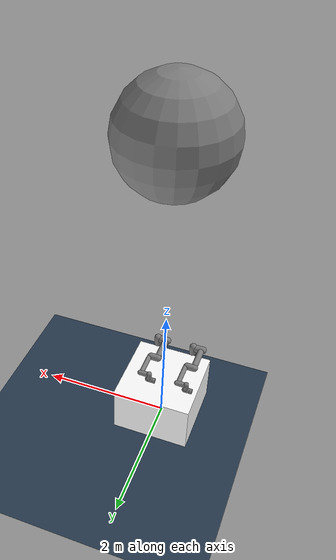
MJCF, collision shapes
<mujoco model="table_arena">
  <option integrator="implicitfast" />
<compiler angle="radian" meshdir="/home/lxu/LizhouXu/Repo/shirt_manipulation/models/universal_robots_ur5e/assets" autolimits="true" />
    <extension>
        <plugin plugin="mujoco.elasticity.shell" />
    </extension>
  <asset>
    <texture name="plane" type="2d" builtin="checker" rgb1=".2 .3 .4" rgb2=".1 0.15 0.2" width="512" height="512" mark="cross" markrgb=".8 .8 .8" />
    <texture name="hammock" type="2d" builtin="checker" rgb1=".1 .5 .1" rgb2=".5 .1 .1" width="512" height="512" mark="edge" markrgb=".8 .8 .8" />
    <material name="plane" reflectance="0.3" texture="plane" texrepeat="1 1" texuniform="true" />
    <material name="hammock" texture="hammock" />
    <material name="white" rgba="1 1 1 1" />
  </asset>
  <default>
    <default class="ur5e">
      <material specular="0.5" shininess="0.25" />
      <joint axis="0 1 0" range="-6.28319 6.28319" armature="0.1" />
      <general gaintype="fixed" biastype="affine" ctrlrange="-6.2831 6.2831" gainprm="2000" biasprm="0 -2000 -400" forcerange="-150 150" />
      <default class="size3">
        <default class="size3_limited">
          <joint range="-3.1415 3.1415" />
          <general ctrlrange="-3.1415 3.1415" />
        </default>
      </default>
      <default class="size1">
        <general gainprm="500" biasprm="0 -500 -100" forcerange="-28 28" />
      </default>
      <default class="visual">
        <geom type="mesh" contype="0" conaffinity="0" group="2" />
      </default>
      <default class="collision">
        <geom type="capsule" group="3" />
        <default class="eef_collision">
          <geom type="cylinder" />
        </default>
      </default>
      <site size="0.001" rgba="0.5 0.5 0.5 0.3" group="4" />
    </default>
  </default>

  <asset>
    <material class="ur5e" name="black" rgba="0.033 0.033 0.033 1" />
    <material class="ur5e" name="jointgray" rgba="0.278 0.278 0.278 1" />
    <material class="ur5e" name="linkgray" rgba="0.82 0.82 0.82 1" />
    <material class="ur5e" name="urblue" rgba="0.49 0.678 0.8 1" />

    <mesh file="base_0.obj" />
    <mesh file="base_1.obj" />
    <mesh file="shoulder_0.obj" />
    <mesh file="shoulder_1.obj" />
    <mesh file="shoulder_2.obj" />
    <mesh file="upperarm_0.obj" />
    <mesh file="upperarm_1.obj" />
    <mesh file="upperarm_2.obj" />
    <mesh file="upperarm_3.obj" />
    <mesh file="forearm_0.obj" />
    <mesh file="forearm_1.obj" />
    <mesh file="forearm_2.obj" />
    <mesh file="forearm_3.obj" />
    <mesh file="wrist1_0.obj" />
    <mesh file="wrist1_1.obj" />
    <mesh file="wrist1_2.obj" />
    <mesh file="wrist2_0.obj" />
    <mesh file="wrist2_1.obj" />
    <mesh file="wrist2_2.obj" />
    <mesh file="wrist3.obj" />
  </asset>

  <worldbody>

    <geom condim="3" group="1" name="floor" material="plane" pos="0 0 0" size="3 3 .125" type="plane" />

    <body name="table" pos="0 0 0.4">
      <geom pos="0 0 0" size="0.6 0.6 0.4" type="box" material="white" group="0" name="table_collision" friction="1 0.005 0.0001" />
      <geom pos="0 0 0" size="0.6 0.6 0.4" type="box" material="white" conaffinity="0" contype="0" group="1" name="table_visual" />
      <site pos="0 0 0.4" name="table_top" size="0.001 0.001 0.001" rgba="0 0 0 0" />
    </body>
    <light pos="1.0 1.0 1.5" dir="-0.2 -0.2 -1" specular="0.3 0.3 0.3" directional="true" castshadow="false" />

  <body name="r1_base" pos="0.3 -0.6 0.81" quat="1 0 0 1" childclass="ur5e">
      <inertial mass="4.0" pos="0 0 0" diaginertia="0.00443333156 0.00443333156 0.0072" />
      <geom mesh="base_0" material="black" class="visual" />
      <geom mesh="base_1" material="jointgray" class="visual" />
      <body name="r1_shoulder_link" pos="0 0 0.163">
        <inertial mass="3.7" pos="0 0 0" diaginertia="0.0102675 0.0102675 0.00666" />
        <joint name="r1_shoulder_pan_joint" class="size3" axis="0 0 1" />
        <geom mesh="shoulder_0" material="urblue" class="visual" />
        <geom mesh="shoulder_1" material="black" class="visual" />
        <geom mesh="shoulder_2" material="jointgray" class="visual" />
        <geom class="collision" size="0.06 0.06" pos="0 0 -0.04" />
        <body name="r1_upper_arm_link" pos="0 0.138 0" quat="1 0 1 0">
          <inertial mass="8.393" pos="0 0 0.2125" diaginertia="0.133886 0.133886 0.0151074" />
          <joint name="r1_shoulder_lift_joint" class="size3" />
          <geom mesh="upperarm_0" material="linkgray" class="visual" />
          <geom mesh="upperarm_1" material="black" class="visual" />
          <geom mesh="upperarm_2" material="jointgray" class="visual" />
          <geom mesh="upperarm_3" material="urblue" class="visual" />
          <geom class="collision" pos="0 -0.04 0" quat="1 1 0 0" size="0.06 0.06" />
          <geom class="collision" size="0.05 0.2" pos="0 0 0.2" />
          <body name="r1_forearm_link" pos="0 -0.131 0.425">
            <inertial mass="2.275" pos="0 0 0.196" diaginertia="0.0311796 0.0311796 0.004095" />
            <joint name="r1_elbow_joint" class="size3_limited" />
            <geom mesh="forearm_0" material="urblue" class="visual" />
            <geom mesh="forearm_1" material="linkgray" class="visual" />
            <geom mesh="forearm_2" material="black" class="visual" />
            <geom mesh="forearm_3" material="jointgray" class="visual" />
            <geom class="collision" pos="0 0.08 0" quat="1 1 0 0" size="0.055 0.06" />
            <geom class="collision" size="0.038 0.19" pos="0 0 0.2" />
            <body name="r1_wrist_1_link" pos="0 0 0.392" quat="1 0 1 0">
              <inertial mass="1.219" pos="0 0.127 0" diaginertia="0.0025599 0.0025599 0.0021942" />
              <joint name="r1_wrist_1_joint" class="size1" />
              <geom mesh="wrist1_0" material="black" class="visual" />
              <geom mesh="wrist1_1" material="urblue" class="visual" />
              <geom mesh="wrist1_2" material="jointgray" class="visual" />
              <geom class="collision" pos="0 0.05 0" quat="1 1 0 0" size="0.04 0.07" />
              <body name="r1_wrist_2_link" pos="0 0.127 0">
                <inertial mass="1.219" pos="0 0 0.1" diaginertia="0.0025599 0.0025599 0.0021942" />
                <joint name="r1_wrist_2_joint" axis="0 0 1" class="size1" />
                <geom mesh="wrist2_0" material="black" class="visual" />
                <geom mesh="wrist2_1" material="urblue" class="visual" />
                <geom mesh="wrist2_2" material="jointgray" class="visual" />
                <geom class="collision" size="0.04 0.06" pos="0 0 0.04" />
                <geom class="collision" pos="0 0.02 0.1" quat="1 1 0 0" size="0.04 0.04" />
                <body name="r1_wrist_3_link" pos="0 0 0.1">
                  <inertial mass="0.1889" pos="0 0.0771683 0" quat="1 0 0 1" diaginertia="0.000132134 9.90863e-05 9.90863e-05" />
                  <joint name="r1_wrist_3_joint" class="size1" />
                  <geom material="linkgray" mesh="wrist3" class="visual" />
                  <geom class="eef_collision" pos="0 0.08 0" quat="1 1 0 0" size="0.04 0.02" />
                  <site name="r1_attachment_site" pos="0 0.1 0" quat="-1 1 0 0" />
                </body>
              </body>
            </body>
          </body>
        </body>
      </body>
    </body>

  <body name="r2_base" pos="-0.3 -0.6 0.81" quat="1 0 0 1" childclass="ur5e">
      <inertial mass="4.0" pos="0 0 0" diaginertia="0.00443333156 0.00443333156 0.0072" />
      <geom mesh="base_0" material="black" class="visual" />
      <geom mesh="base_1" material="jointgray" class="visual" />
      <body name="r2_shoulder_link" pos="0 0 0.163">
        <inertial mass="3.7" pos="0 0 0" diaginertia="0.0102675 0.0102675 0.00666" />
        <joint name="r2_shoulder_pan_joint" class="size3" axis="0 0 1" />
        <geom mesh="shoulder_0" material="urblue" class="visual" />
        <geom mesh="shoulder_1" material="black" class="visual" />
        <geom mesh="shoulder_2" material="jointgray" class="visual" />
        <geom class="collision" size="0.06 0.06" pos="0 0 -0.04" />
        <body name="r2_upper_arm_link" pos="0 0.138 0" quat="1 0 1 0">
          <inertial mass="8.393" pos="0 0 0.2125" diaginertia="0.133886 0.133886 0.0151074" />
          <joint name="r2_shoulder_lift_joint" class="size3" />
          <geom mesh="upperarm_0" material="linkgray" class="visual" />
          <geom mesh="upperarm_1" material="black" class="visual" />
          <geom mesh="upperarm_2" material="jointgray" class="visual" />
          <geom mesh="upperarm_3" material="urblue" class="visual" />
          <geom class="collision" pos="0 -0.04 0" quat="1 1 0 0" size="0.06 0.06" />
          <geom class="collision" size="0.05 0.2" pos="0 0 0.2" />
          <body name="r2_forearm_link" pos="0 -0.131 0.425">
            <inertial mass="2.275" pos="0 0 0.196" diaginertia="0.0311796 0.0311796 0.004095" />
            <joint name="r2_elbow_joint" class="size3_limited" />
            <geom mesh="forearm_0" material="urblue" class="visual" />
            <geom mesh="forearm_1" material="linkgray" class="visual" />
            <geom mesh="forearm_2" material="black" class="visual" />
            <geom mesh="forearm_3" material="jointgray" class="visual" />
            <geom class="collision" pos="0 0.08 0" quat="1 1 0 0" size="0.055 0.06" />
            <geom class="collision" size="0.038 0.19" pos="0 0 0.2" />
            <body name="r2_wrist_1_link" pos="0 0 0.392" quat="1 0 1 0">
              <inertial mass="1.219" pos="0 0.127 0" diaginertia="0.0025599 0.0025599 0.0021942" />
              <joint name="r2_wrist_1_joint" class="size1" />
              <geom mesh="wrist1_0" material="black" class="visual" />
              <geom mesh="wrist1_1" material="urblue" class="visual" />
              <geom mesh="wrist1_2" material="jointgray" class="visual" />
              <geom class="collision" pos="0 0.05 0" quat="1 1 0 0" size="0.04 0.07" />
              <body name="r2_wrist_2_link" pos="0 0.127 0">
                <inertial mass="1.219" pos="0 0 0.1" diaginertia="0.0025599 0.0025599 0.0021942" />
                <joint name="r2_wrist_2_joint" axis="0 0 1" class="size1" />
                <geom mesh="wrist2_0" material="black" class="visual" />
                <geom mesh="wrist2_1" material="urblue" class="visual" />
                <geom mesh="wrist2_2" material="jointgray" class="visual" />
                <geom class="collision" size="0.04 0.06" pos="0 0 0.04" />
                <geom class="collision" pos="0 0.02 0.1" quat="1 1 0 0" size="0.04 0.04" />
                <body name="r2_wrist_3_link" pos="0 0 0.1">
                  <inertial mass="0.1889" pos="0 0.0771683 0" quat="1 0 0 1" diaginertia="0.000132134 9.90863e-05 9.90863e-05" />
                  <joint name="r2_wrist_3_joint" class="size1" />
                  <geom material="linkgray" mesh="wrist3" class="visual" />
                  <geom class="eef_collision" pos="0 0.08 0" quat="1 1 0 0" size="0.04 0.02" />
                  <site name="r2_attachment_site" pos="0 0.1 0" quat="-1 1 0 0" />
                </body>
              </body>
            </body>
          </body>
        </body>
      </body>
    </body>

    <camera mode="fixed" name="birdview" pos="0.0 0 2.4" quat="0.7071 0 0 0.7071" />

  <geom type="sphere" size="0.8" pos="0.004106737535379382 0.02145249729705183 4.934825686120589" /></worldbody>

<actuator>
    <general class="size3" name="r1_shoulder_pan" joint="r1_shoulder_pan_joint" />
    <general class="size3" name="r1_shoulder_lift" joint="r1_shoulder_lift_joint" />
    <general class="size3_limited" name="r1_elbow" joint="r1_elbow_joint" />
    <general class="size1" name="r1_wrist_1" joint="r1_wrist_1_joint" />
    <general class="size1" name="r1_wrist_2" joint="r1_wrist_2_joint" />
    <general class="size1" name="r1_wrist_3" joint="r1_wrist_3_joint" />

    <general class="size3" name="r2_shoulder_pan" joint="r2_shoulder_pan_joint" />
    <general class="size3" name="r2_shoulder_lift" joint="r2_shoulder_lift_joint" />
    <general class="size3_limited" name="r2_elbow" joint="r2_elbow_joint" />
    <general class="size1" name="r2_wrist_1" joint="r2_wrist_1_joint" />
    <general class="size1" name="r2_wrist_2" joint="r2_wrist_2_joint" />
    <general class="size1" name="r2_wrist_3" joint="r2_wrist_3_joint" />
  </actuator>

  <keyframe>
    <key name="home" qpos="-1.5708 -1.5708 1.5708 -1.5708 -1.5708 0 -1.5708 -1.5708 1.5708 -1.5708 -1.5708 0" ctrl="-1.5708 -1.5708 1.5708 -1.5708 -1.5708 0 -1.5708 -1.5708 1.5708 -1.5708 -1.5708 0" />
  </keyframe>
</mujoco>
